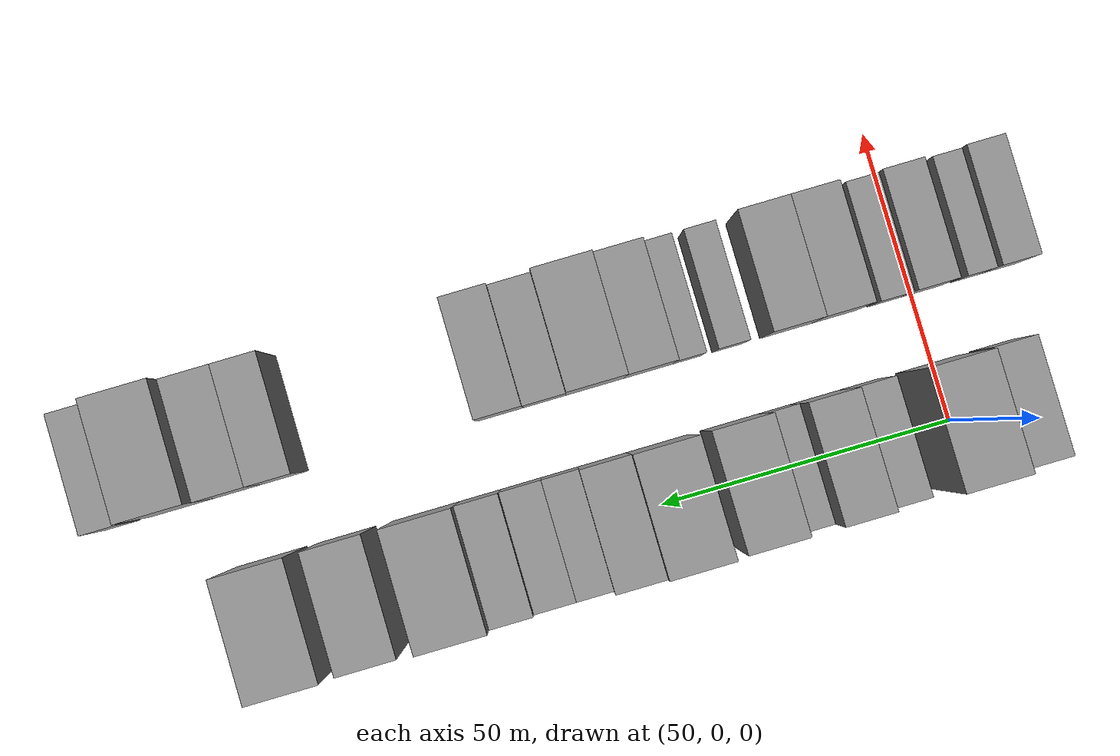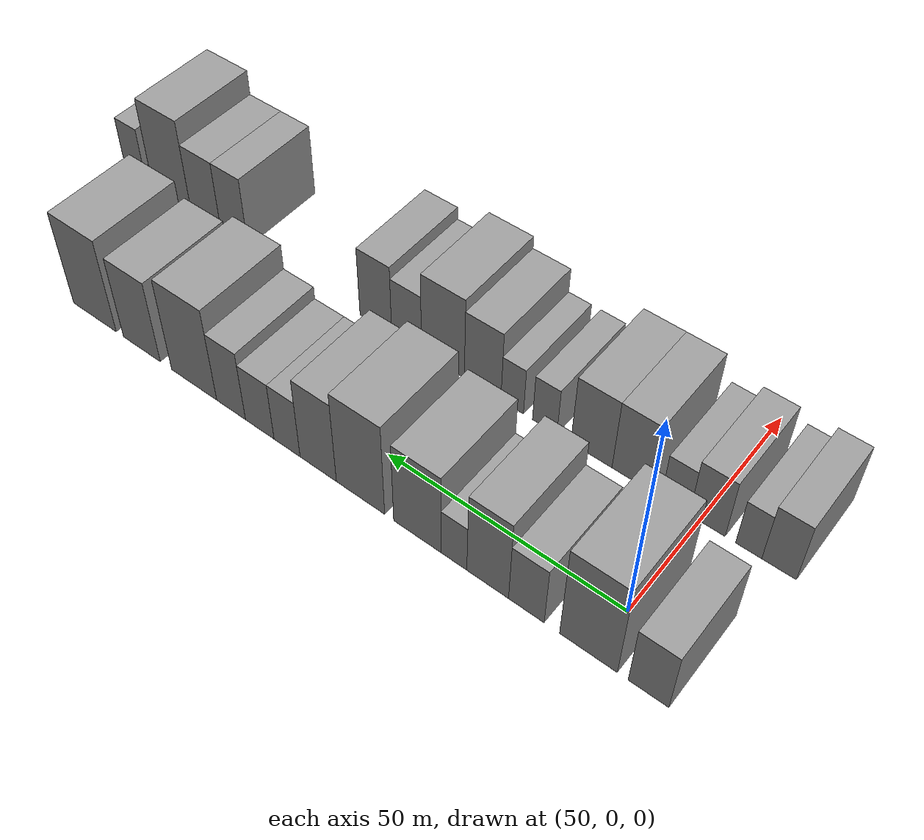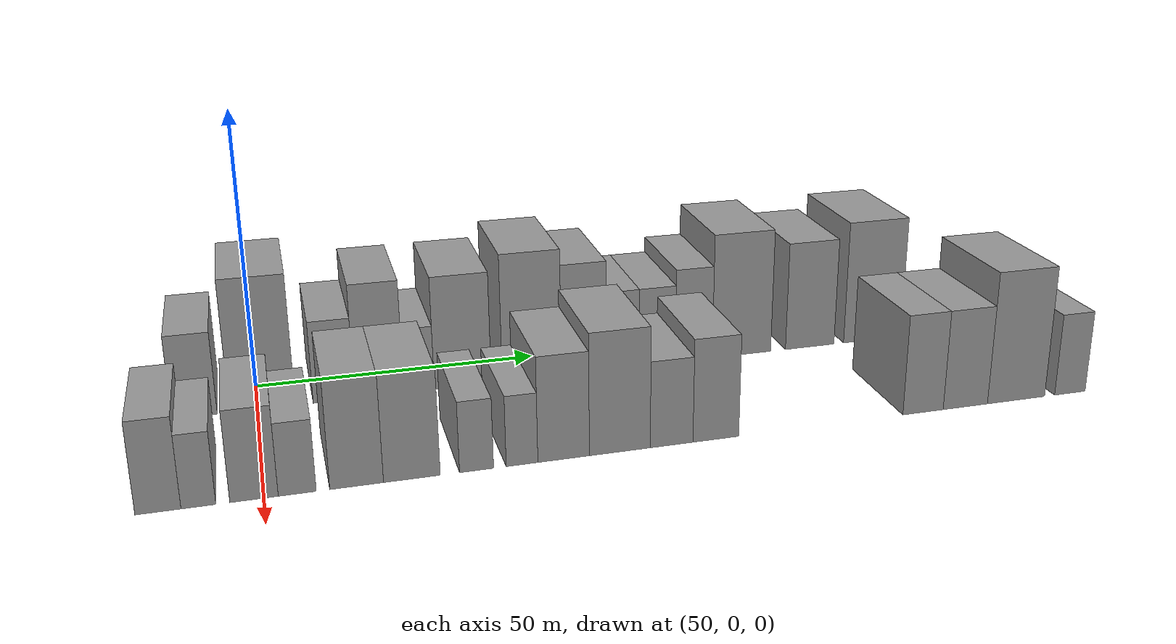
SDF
<sdf version="1.6">
 <world name="default">
  <model name="building_31">
   <static>1</static>
   <pose>50.0000 -10.3079 0 0.000000 0.000000 0.000000</pose>
   <link name="link">
    <pose>0 0 7.50 0 0 0</pose>
    <collision name="collision"><geometry><box><size>20.0000 7.3730 15.0000</size></box></geometry></collision>
    <visual name="visual">
     <cast_shadows>0</cast_shadows>
     <geometry><box><size>20.0000 7.3730 15.0000</size></box></geometry>
     <material>
      <script>
       <uri>model://grey_wall/materials/scripts</uri>
       <uri>model://grey_wall/materials/textures</uri>
       <name>vrc/grey_wall</name>
      </script>
     </material>
    </visual>
   </link>
  </model>
  <model name="building_32">
   <static>1</static>
   <pose>50.0000 0.8469 0 0.000000 0.000000 0.000000</pose>
   <link name="link">
    <pose>0 0 12.00 0 0 0</pose>
    <collision name="collision"><geometry><box><size>20.0000 10.9367 24.0000</size></box></geometry></collision>
    <visual name="visual">
     <cast_shadows>0</cast_shadows>
     <geometry><box><size>20.0000 10.9367 24.0000</size></box></geometry>
     <material>
      <script>
       <uri>model://grey_wall/materials/scripts</uri>
       <uri>model://grey_wall/materials/textures</uri>
       <name>vrc/grey_wall</name>
      </script>
     </material>
    </visual>
   </link>
  </model>
  <model name="building_33">
   <static>1</static>
   <pose>50.0000 12.8434 0 0.000000 0.000000 0.000000</pose>
   <link name="link">
    <pose>0 0 7.50 0 0 0</pose>
    <collision name="collision"><geometry><box><size>20.0000 7.0563 15.0000</size></box></geometry></collision>
    <visual name="visual">
     <cast_shadows>0</cast_shadows>
     <geometry><box><size>20.0000 7.0563 15.0000</size></box></geometry>
     <material>
      <script>
       <uri>model://grey_wall/materials/scripts</uri>
       <uri>model://grey_wall/materials/textures</uri>
       <name>vrc/grey_wall</name>
      </script>
     </material>
    </visual>
   </link>
  </model>
  <model name="building_34">
   <static>1</static>
   <pose>50.0000 20.6297 0 0.000000 0.000000 0.000000</pose>
   <link name="link">
    <pose>0 0 10.50 0 0 0</pose>
    <collision name="collision"><geometry><box><size>20.0000 8.5164 21.0000</size></box></geometry></collision>
    <visual name="visual">
     <cast_shadows>0</cast_shadows>
     <geometry><box><size>20.0000 8.5164 21.0000</size></box></geometry>
     <material>
      <script>
       <uri>model://grey_wall/materials/scripts</uri>
       <uri>model://grey_wall/materials/textures</uri>
       <name>vrc/grey_wall</name>
      </script>
     </material>
    </visual>
   </link>
  </model>
  <model name="building_35">
   <static>1</static>
   <pose>50.0000 27.5853 0 0.000000 0.000000 0.000000</pose>
   <link name="link">
    <pose>0 0 6.00 0 0 0</pose>
    <collision name="collision"><geometry><box><size>20.0000 5.3947 12.0000</size></box></geometry></collision>
    <visual name="visual">
     <cast_shadows>0</cast_shadows>
     <geometry><box><size>20.0000 5.3947 12.0000</size></box></geometry>
     <material>
      <script>
       <uri>model://grey_wall/materials/scripts</uri>
       <uri>model://grey_wall/materials/textures</uri>
       <name>vrc/grey_wall</name>
      </script>
     </material>
    </visual>
   </link>
  </model>
  <model name="building_36">
   <static>1</static>
   <pose>50.0000 35.3652 0 0.000000 0.000000 0.000000</pose>
   <link name="link">
    <pose>0 0 10.50 0 0 0</pose>
    <collision name="collision"><geometry><box><size>20.0000 10.1651 21.0000</size></box></geometry></collision>
    <visual name="visual">
     <cast_shadows>0</cast_shadows>
     <geometry><box><size>20.0000 10.1651 21.0000</size></box></geometry>
     <material>
      <script>
       <uri>model://grey_wall/materials/scripts</uri>
       <uri>model://grey_wall/materials/textures</uri>
       <name>vrc/grey_wall</name>
      </script>
     </material>
    </visual>
   </link>
  </model>
  <model name="building_37">
   <static>1</static>
   <pose>50.0000 47.8778 0 0.000000 0.000000 0.000000</pose>
   <link name="link">
    <pose>0 0 12.00 0 0 0</pose>
    <collision name="collision"><geometry><box><size>20.0000 10.8600 24.0000</size></box></geometry></collision>
    <visual name="visual">
     <cast_shadows>0</cast_shadows>
     <geometry><box><size>20.0000 10.8600 24.0000</size></box></geometry>
     <material>
      <script>
       <uri>model://grey_wall/materials/scripts</uri>
       <uri>model://grey_wall/materials/textures</uri>
       <name>vrc/grey_wall</name>
      </script>
     </material>
    </visual>
   </link>
  </model>
  <model name="building_38">
   <static>1</static>
   <pose>50.0000 57.5322 0 0.000000 0.000000 0.000000</pose>
   <link name="link">
    <pose>0 0 10.50 0 0 0</pose>
    <collision name="collision"><geometry><box><size>20.0000 8.4489 21.0000</size></box></geometry></collision>
    <visual name="visual">
     <cast_shadows>0</cast_shadows>
     <geometry><box><size>20.0000 8.4489 21.0000</size></box></geometry>
     <material>
      <script>
       <uri>model://grey_wall/materials/scripts</uri>
       <uri>model://grey_wall/materials/textures</uri>
       <name>vrc/grey_wall</name>
      </script>
     </material>
    </visual>
   </link>
  </model>
  <model name="building_39">
   <static>1</static>
   <pose>50.0000 64.8607 0 0.000000 0.000000 0.000000</pose>
   <link name="link">
    <pose>0 0 7.50 0 0 0</pose>
    <collision name="collision"><geometry><box><size>20.0000 6.2079 15.0000</size></box></geometry></collision>
    <visual name="visual">
     <cast_shadows>0</cast_shadows>
     <geometry><box><size>20.0000 6.2079 15.0000</size></box></geometry>
     <material>
      <script>
       <uri>model://grey_wall/materials/scripts</uri>
       <uri>model://grey_wall/materials/textures</uri>
       <name>vrc/grey_wall</name>
      </script>
     </material>
    </visual>
   </link>
  </model>
  <model name="building_40">
   <static>1</static>
   <pose>50.0000 71.4527 0 0.000000 0.000000 0.000000</pose>
   <link name="link">
    <pose>0 0 7.50 0 0 0</pose>
    <collision name="collision"><geometry><box><size>20.0000 6.9761 15.0000</size></box></geometry></collision>
    <visual name="visual">
     <cast_shadows>0</cast_shadows>
     <geometry><box><size>20.0000 6.9761 15.0000</size></box></geometry>
     <material>
      <script>
       <uri>model://grey_wall/materials/scripts</uri>
       <uri>model://grey_wall/materials/textures</uri>
       <name>vrc/grey_wall</name>
      </script>
     </material>
    </visual>
   </link>
  </model>
  <model name="building_41">
   <static>1</static>
   <pose>50.0000 78.5423 0 0.000000 0.000000 0.000000</pose>
   <link name="link">
    <pose>0 0 9.00 0 0 0</pose>
    <collision name="collision"><geometry><box><size>20.0000 7.2032 18.0000</size></box></geometry></collision>
    <visual name="visual">
     <cast_shadows>0</cast_shadows>
     <geometry><box><size>20.0000 7.2032 18.0000</size></box></geometry>
     <material>
      <script>
       <uri>model://grey_wall/materials/scripts</uri>
       <uri>model://grey_wall/materials/textures</uri>
       <name>vrc/grey_wall</name>
      </script>
     </material>
    </visual>
   </link>
  </model>
  <model name="building_42">
   <static>1</static>
   <pose>50.0000 87.9648 0 0.000000 0.000000 0.000000</pose>
   <link name="link">
    <pose>0 0 12.00 0 0 0</pose>
    <collision name="collision"><geometry><box><size>20.0000 11.6419 24.0000</size></box></geometry></collision>
    <visual name="visual">
     <cast_shadows>0</cast_shadows>
     <geometry><box><size>20.0000 11.6419 24.0000</size></box></geometry>
     <material>
      <script>
       <uri>model://grey_wall/materials/scripts</uri>
       <uri>model://grey_wall/materials/textures</uri>
       <name>vrc/grey_wall</name>
      </script>
     </material>
    </visual>
   </link>
  </model>
  <model name="building_43">
   <static>1</static>
   <pose>50.0000 101.7564 0 0.000000 0.000000 0.000000</pose>
   <link name="link">
    <pose>0 0 10.50 0 0 0</pose>
    <collision name="collision"><geometry><box><size>20.0000 9.9412 21.0000</size></box></geometry></collision>
    <visual name="visual">
     <cast_shadows>0</cast_shadows>
     <geometry><box><size>20.0000 9.9412 21.0000</size></box></geometry>
     <material>
      <script>
       <uri>model://grey_wall/materials/scripts</uri>
       <uri>model://grey_wall/materials/textures</uri>
       <name>vrc/grey_wall</name>
      </script>
     </material>
    </visual>
   </link>
  </model>
  <model name="building_44">
   <static>1</static>
   <pose>50.0000 114.7146 0 0.000000 0.000000 0.000000</pose>
   <link name="link">
    <pose>0 0 12.00 0 0 0</pose>
    <collision name="collision"><geometry><box><size>20.0000 11.9752 24.0000</size></box></geometry></collision>
    <visual name="visual">
     <cast_shadows>0</cast_shadows>
     <geometry><box><size>20.0000 11.9752 24.0000</size></box></geometry>
     <material>
      <script>
       <uri>model://grey_wall/materials/scripts</uri>
       <uri>model://grey_wall/materials/textures</uri>
       <name>vrc/grey_wall</name>
      </script>
     </material>
    </visual>
   </link>
  </model>
  <model name="building_89">
   <static>1</static>
   <pose>82.0000 -15.0850 0 0.000000 0.000000 0.000000</pose>
   <link name="link">
    <pose>0 0 7.50 0 0 0</pose>
    <collision name="collision"><geometry><box><size>20.0000 6.4347 15.0000</size></box></geometry></collision>
    <visual name="visual">
     <cast_shadows>0</cast_shadows>
     <geometry><box><size>20.0000 6.4347 15.0000</size></box></geometry>
     <material>
      <script>
       <uri>model://grey_wall/materials/scripts</uri>
       <uri>model://grey_wall/materials/textures</uri>
       <name>vrc/grey_wall</name>
      </script>
     </material>
    </visual>
   </link>
  </model>
  <model name="building_90">
   <static>1</static>
   <pose>82.0000 -9.3966 0 0.000000 0.000000 0.000000</pose>
   <link name="link">
    <pose>0 0 6.00 0 0 0</pose>
    <collision name="collision"><geometry><box><size>20.0000 4.9423 12.0000</size></box></geometry></collision>
    <visual name="visual">
     <cast_shadows>0</cast_shadows>
     <geometry><box><size>20.0000 4.9423 12.0000</size></box></geometry>
     <material>
      <script>
       <uri>model://grey_wall/materials/scripts</uri>
       <uri>model://grey_wall/materials/textures</uri>
       <name>vrc/grey_wall</name>
      </script>
     </material>
    </visual>
   </link>
  </model>
  <model name="building_91">
   <static>1</static>
   <pose>82.0000 -1.4251 0 0.000000 0.000000 0.000000</pose>
   <link name="link">
    <pose>0 0 7.50 0 0 0</pose>
    <collision name="collision"><geometry><box><size>20.0000 7.0005 15.0000</size></box></geometry></collision>
    <visual name="visual">
     <cast_shadows>0</cast_shadows>
     <geometry><box><size>20.0000 7.0005 15.0000</size></box></geometry>
     <material>
      <script>
       <uri>model://grey_wall/materials/scripts</uri>
       <uri>model://grey_wall/materials/textures</uri>
       <name>vrc/grey_wall</name>
      </script>
     </material>
    </visual>
   </link>
  </model>
  <model name="building_92">
   <static>1</static>
   <pose>82.0000 4.8660 0 0.000000 0.000000 0.000000</pose>
   <link name="link">
    <pose>0 0 6.00 0 0 0</pose>
    <collision name="collision"><geometry><box><size>20.0000 5.5818 12.0000</size></box></geometry></collision>
    <visual name="visual">
     <cast_shadows>0</cast_shadows>
     <geometry><box><size>20.0000 5.5818 12.0000</size></box></geometry>
     <material>
      <script>
       <uri>model://grey_wall/materials/scripts</uri>
       <uri>model://grey_wall/materials/textures</uri>
       <name>vrc/grey_wall</name>
      </script>
     </material>
    </visual>
   </link>
  </model>
  <model name="building_93">
   <static>1</static>
   <pose>82.0000 13.6942 0 0.000000 0.000000 0.000000</pose>
   <link name="link">
    <pose>0 0 9.00 0 0 0</pose>
    <collision name="collision"><geometry><box><size>20.0000 8.0745 18.0000</size></box></geometry></collision>
    <visual name="visual">
     <cast_shadows>0</cast_shadows>
     <geometry><box><size>20.0000 8.0745 18.0000</size></box></geometry>
     <material>
      <script>
       <uri>model://grey_wall/materials/scripts</uri>
       <uri>model://grey_wall/materials/textures</uri>
       <name>vrc/grey_wall</name>
      </script>
     </material>
    </visual>
   </link>
  </model>
  <model name="building_94">
   <static>1</static>
   <pose>82.0000 22.0796 0 0.000000 0.000000 0.000000</pose>
   <link name="link">
    <pose>0 0 9.00 0 0 0</pose>
    <collision name="collision"><geometry><box><size>20.0000 8.6964 18.0000</size></box></geometry></collision>
    <visual name="visual">
     <cast_shadows>0</cast_shadows>
     <geometry><box><size>20.0000 8.6964 18.0000</size></box></geometry>
     <material>
      <script>
       <uri>model://grey_wall/materials/scripts</uri>
       <uri>model://grey_wall/materials/textures</uri>
       <name>vrc/grey_wall</name>
      </script>
     </material>
    </visual>
   </link>
  </model>
  <model name="building_95">
   <static>1</static>
   <pose>82.0000 32.1022 0 0.000000 0.000000 0.000000</pose>
   <link name="link">
    <pose>0 0 6.00 0 0 0</pose>
    <collision name="collision"><geometry><box><size>20.0000 5.3489 12.0000</size></box></geometry></collision>
    <visual name="visual">
     <cast_shadows>0</cast_shadows>
     <geometry><box><size>20.0000 5.3489 12.0000</size></box></geometry>
     <material>
      <script>
       <uri>model://grey_wall/materials/scripts</uri>
       <uri>model://grey_wall/materials/textures</uri>
       <name>vrc/grey_wall</name>
      </script>
     </material>
    </visual>
   </link>
  </model>
  <model name="building_96">
   <static>1</static>
   <pose>82.0000 39.3089 0 0.000000 0.000000 0.000000</pose>
   <link name="link">
    <pose>0 0 6.00 0 0 0</pose>
    <collision name="collision"><geometry><box><size>20.0000 5.0645 12.0000</size></box></geometry></collision>
    <visual name="visual">
     <cast_shadows>0</cast_shadows>
     <geometry><box><size>20.0000 5.0645 12.0000</size></box></geometry>
     <material>
      <script>
       <uri>model://grey_wall/materials/scripts</uri>
       <uri>model://grey_wall/materials/textures</uri>
       <name>vrc/grey_wall</name>
      </script>
     </material>
    </visual>
   </link>
  </model>
  <model name="building_97">
   <static>1</static>
   <pose>82.0000 46.0332 0 0.000000 0.000000 0.000000</pose>
   <link name="link">
    <pose>0 0 9.00 0 0 0</pose>
    <collision name="collision"><geometry><box><size>20.0000 8.3841 18.0000</size></box></geometry></collision>
    <visual name="visual">
     <cast_shadows>0</cast_shadows>
     <geometry><box><size>20.0000 8.3841 18.0000</size></box></geometry>
     <material>
      <script>
       <uri>model://grey_wall/materials/scripts</uri>
       <uri>model://grey_wall/materials/textures</uri>
       <name>vrc/grey_wall</name>
      </script>
     </material>
    </visual>
   </link>
  </model>
  <model name="building_98">
   <static>1</static>
   <pose>82.0000 55.2792 0 0.000000 0.000000 0.000000</pose>
   <link name="link">
    <pose>0 0 10.50 0 0 0</pose>
    <collision name="collision"><geometry><box><size>20.0000 10.1079 21.0000</size></box></geometry></collision>
    <visual name="visual">
     <cast_shadows>0</cast_shadows>
     <geometry><box><size>20.0000 10.1079 21.0000</size></box></geometry>
     <material>
      <script>
       <uri>model://grey_wall/materials/scripts</uri>
       <uri>model://grey_wall/materials/textures</uri>
       <name>vrc/grey_wall</name>
      </script>
     </material>
    </visual>
   </link>
  </model>
  <model name="building_99">
   <static>1</static>
   <pose>82.0000 63.9472 0 0.000000 0.000000 0.000000</pose>
   <link name="link">
    <pose>0 0 7.50 0 0 0</pose>
    <collision name="collision"><geometry><box><size>20.0000 7.2280 15.0000</size></box></geometry></collision>
    <visual name="visual">
     <cast_shadows>0</cast_shadows>
     <geometry><box><size>20.0000 7.2280 15.0000</size></box></geometry>
     <material>
      <script>
       <uri>model://grey_wall/materials/scripts</uri>
       <uri>model://grey_wall/materials/textures</uri>
       <name>vrc/grey_wall</name>
      </script>
     </material>
    </visual>
   </link>
  </model>
  <model name="building_100">
   <static>1</static>
   <pose>82.0000 71.5030 0 0.000000 0.000000 0.000000</pose>
   <link name="link">
    <pose>0 0 9.00 0 0 0</pose>
    <collision name="collision"><geometry><box><size>20.0000 7.8837 18.0000</size></box></geometry></collision>
    <visual name="visual">
     <cast_shadows>0</cast_shadows>
     <geometry><box><size>20.0000 7.8837 18.0000</size></box></geometry>
     <material>
      <script>
       <uri>model://grey_wall/materials/scripts</uri>
       <uri>model://grey_wall/materials/textures</uri>
       <name>vrc/grey_wall</name>
      </script>
     </material>
    </visual>
   </link>
  </model>
  <model name="building_101">
   <static>1</static>
   <pose>82.0000 108.8107 0 0.000000 0.000000 0.000000</pose>
   <link name="link">
    <pose>0 0 9.00 0 0 0</pose>
    <collision name="collision"><geometry><box><size>20.0000 7.5772 18.0000</size></box></geometry></collision>
    <visual name="visual">
     <cast_shadows>0</cast_shadows>
     <geometry><box><size>20.0000 7.5772 18.0000</size></box></geometry>
     <material>
      <script>
       <uri>model://grey_wall/materials/scripts</uri>
       <uri>model://grey_wall/materials/textures</uri>
       <name>vrc/grey_wall</name>
      </script>
     </material>
    </visual>
   </link>
  </model>
  <model name="building_102">
   <static>1</static>
   <pose>82.0000 116.8280 0 0.000000 0.000000 0.000000</pose>
   <link name="link">
    <pose>0 0 9.00 0 0 0</pose>
    <collision name="collision"><geometry><box><size>20.0000 8.4575 18.0000</size></box></geometry></collision>
    <visual name="visual">
     <cast_shadows>0</cast_shadows>
     <geometry><box><size>20.0000 8.4575 18.0000</size></box></geometry>
     <material>
      <script>
       <uri>model://grey_wall/materials/scripts</uri>
       <uri>model://grey_wall/materials/textures</uri>
       <name>vrc/grey_wall</name>
      </script>
     </material>
    </visual>
   </link>
  </model>
  <model name="building_103">
   <static>1</static>
   <pose>82.0000 126.6372 0 0.000000 0.000000 0.000000</pose>
   <link name="link">
    <pose>0 0 12.00 0 0 0</pose>
    <collision name="collision"><geometry><box><size>20.0000 11.1607 24.0000</size></box></geometry></collision>
    <visual name="visual">
     <cast_shadows>0</cast_shadows>
     <geometry><box><size>20.0000 11.1607 24.0000</size></box></geometry>
     <material>
      <script>
       <uri>model://grey_wall/materials/scripts</uri>
       <uri>model://grey_wall/materials/textures</uri>
       <name>vrc/grey_wall</name>
      </script>
     </material>
    </visual>
   </link>
  </model>
  <model name="building_104">
   <static>1</static>
   <pose>82.0000 137.2559 0 0.000000 0.000000 0.000000</pose>
   <link name="link">
    <pose>0 0 7.50 0 0 0</pose>
    <collision name="collision"><geometry><box><size>20.0000 6.0768 15.0000</size></box></geometry></collision>
    <visual name="visual">
     <cast_shadows>0</cast_shadows>
     <geometry><box><size>20.0000 6.0768 15.0000</size></box></geometry>
     <material>
      <script>
       <uri>model://grey_wall/materials/scripts</uri>
       <uri>model://grey_wall/materials/textures</uri>
       <name>vrc/grey_wall</name>
      </script>
     </material>
    </visual>
   </link>
  </model>
 </world>
</sdf>
